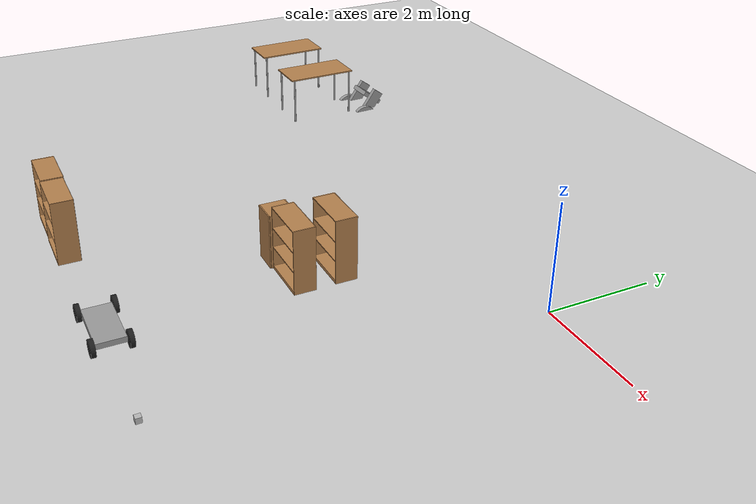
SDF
<sdf version="1.6">
 <world name="default">
  <model name="ground_plane">
   <static>1</static>
   <link name="link">
    <collision name="collision">
     <geometry><plane><normal>0 0 1</normal><size>100 100</size></plane></geometry>
     <surface><friction><ode><mu>100</mu><mu2>50</mu2></ode></friction></surface>
    </collision>
    <visual name="visual">
     <cast_shadows>0</cast_shadows>
     <geometry><plane><normal>0 0 1</normal><size>100 100</size></plane></geometry>
     <material>
      <script><uri>file://media/materials/scripts/gazebo.material</uri><name>Gazebo/Grey</name></script>
     </material>
    </visual>
   </link>
  </model>
  <model name="robot_clone">
   <link name="link_0">
    <inertial>
     <mass>1</mass>
     <inertia>
      <ixx>0.166667</ixx>
      <ixy>0</ixy>
      <ixz>0</ixz>
      <iyy>0.166667</iyy>
      <iyz>0</iyz>
      <izz>0.166667</izz>
     </inertia>
    </inertial>
    <pose>-0.275 0.827554 -0.060043 0 -0 0</pose>
    <visual name="visual">
     <geometry><box><size>0.5 0.5 0.1</size></box></geometry>
     <material>
      <lighting>1</lighting>
      <script><uri>file://media/materials/scripts/gazebo.material</uri><name>Gazebo/Grey</name></script>
      <shader type="pixel"><normal_map>__default__</normal_map></shader>
      <ambient>0.3 0.3 0.3 1</ambient>
      <diffuse>0.7 0.7 0.7 1</diffuse>
      <specular>0.01 0.01 0.01 1</specular>
      <emissive>0 0 0 1</emissive>
     </material>
    </visual>
    <collision name="collision">
     <geometry><box><size>0.5 0.5 0.1</size></box></geometry>
     <surface>
      <friction>
       <ode><mu>1</mu><mu2>1</mu2><fdir1>0 0 0</fdir1><slip1>0</slip1><slip2>0</slip2></ode>
       <torsional>
        <coefficient>1</coefficient>
        <patch_radius>0</patch_radius>
        <surface_radius>0</surface_radius>
        <use_patch_radius>1</use_patch_radius>
        <ode><slip>0</slip></ode>
       </torsional>
      </friction>
      <bounce><restitution_coefficient>0</restitution_coefficient><threshold>1e+06</threshold></bounce>
      <contact>
       <collide_without_contact>0</collide_without_contact>
       <collide_without_contact_bitmask>1</collide_without_contact_bitmask>
       <collide_bitmask>1</collide_bitmask>
       <ode>
        <soft_cfm>0</soft_cfm>
        <soft_erp>0.2</soft_erp>
        <kp>1e+13</kp>
        <kd>1</kd>
        <max_vel>0.01</max_vel>
        <min_depth>0</min_depth>
       </ode>
       <bullet>
        <split_impulse>1</split_impulse>
        <split_impulse_penetration_threshold>-0.01</split_impulse_penetration_threshold>
        <soft_cfm>0</soft_cfm>
        <soft_erp>0.2</soft_erp>
        <kp>1e+13</kp>
        <kd>1</kd>
       </bullet>
      </contact>
     </surface>
    </collision>
   </link>
   <link name="link_1">
    <inertial>
     <mass>1</mass>
     <inertia>
      <ixx>0.166667</ixx>
      <ixy>0</ixy>
      <ixz>0</ixz>
      <iyy>0.166667</iyy>
      <iyz>0</iyz>
      <izz>0.166667</izz>
     </inertia>
    </inertial>
    <pose>0.025 0.827554 -0.260043 0 -0 0</pose>
    <visual name="visual">
     <geometry><box><size>0.1 0.25 0.8</size></box></geometry>
     <material>
      <lighting>1</lighting>
      <script><uri>file://media/materials/scripts/gazebo.material</uri><name>Gazebo/Grey</name></script>
      <shader type="pixel"><normal_map>__default__</normal_map></shader>
      <ambient>0.3 0.3 0.3 1</ambient>
      <diffuse>0.7 0.7 0.7 1</diffuse>
      <specular>0.01 0.01 0.01 1</specular>
      <emissive>0 0 0 1</emissive>
     </material>
    </visual>
    <collision name="collision">
     <geometry><box><size>0.1 0.25 0.8</size></box></geometry>
     <surface>
      <friction>
       <ode><mu>1</mu><mu2>1</mu2><fdir1>0 0 0</fdir1><slip1>0</slip1><slip2>0</slip2></ode>
       <torsional>
        <coefficient>1</coefficient>
        <patch_radius>0</patch_radius>
        <surface_radius>0</surface_radius>
        <use_patch_radius>1</use_patch_radius>
        <ode><slip>0</slip></ode>
       </torsional>
      </friction>
      <bounce><restitution_coefficient>0</restitution_coefficient><threshold>1e+06</threshold></bounce>
      <contact>
       <collide_without_contact>0</collide_without_contact>
       <collide_without_contact_bitmask>1</collide_without_contact_bitmask>
       <collide_bitmask>1</collide_bitmask>
       <ode>
        <soft_cfm>0</soft_cfm>
        <soft_erp>0.2</soft_erp>
        <kp>1e+13</kp>
        <kd>1</kd>
        <max_vel>0.01</max_vel>
        <min_depth>0</min_depth>
       </ode>
       <bullet>
        <split_impulse>1</split_impulse>
        <split_impulse_penetration_threshold>-0.01</split_impulse_penetration_threshold>
        <soft_cfm>0</soft_cfm>
        <soft_erp>0.2</soft_erp>
        <kp>1e+13</kp>
        <kd>1</kd>
       </bullet>
      </contact>
     </surface>
    </collision>
   </link>
   <link name="link_1_0">
    <inertial>
     <mass>1</mass>
     <inertia><ixx>0.145833</ixx><ixy>0</ixy><ixz>0</ixz><iyy>0.145833</iyy><iyz>0</iyz><izz>0.125</izz></inertia>
    </inertial>
    <pose>0.125 0.827554 -0.560043 0 1.57 0</pose>
    <visual name="visual">
     <geometry><cylinder><radius>0.3</radius><length>0.1</length></cylinder></geometry>
     <material>
      <lighting>1</lighting>
      <script><uri>file://media/materials/scripts/gazebo.material</uri><name>Gazebo/Grey</name></script>
      <shader type="pixel"><normal_map>__default__</normal_map></shader>
      <ambient>0.3 0.3 0.3 1</ambient>
      <diffuse>0.7 0.7 0.7 1</diffuse>
      <specular>0.01 0.01 0.01 1</specular>
      <emissive>0 0 0 1</emissive>
     </material>
    </visual>
    <collision name="collision">
     <geometry><cylinder><radius>0.3</radius><length>0.1</length></cylinder></geometry>
     <surface>
      <friction>
       <ode><mu>1</mu><mu2>1</mu2><fdir1>0 0 0</fdir1><slip1>0</slip1><slip2>0</slip2></ode>
       <torsional>
        <coefficient>1</coefficient>
        <patch_radius>0</patch_radius>
        <surface_radius>0</surface_radius>
        <use_patch_radius>1</use_patch_radius>
        <ode><slip>0</slip></ode>
       </torsional>
      </friction>
      <bounce><restitution_coefficient>0</restitution_coefficient><threshold>1e+06</threshold></bounce>
      <contact>
       <collide_without_contact>0</collide_without_contact>
       <collide_without_contact_bitmask>1</collide_without_contact_bitmask>
       <collide_bitmask>1</collide_bitmask>
       <ode>
        <soft_cfm>0</soft_cfm>
        <soft_erp>0.2</soft_erp>
        <kp>1e+13</kp>
        <kd>1</kd>
        <max_vel>0.01</max_vel>
        <min_depth>0</min_depth>
       </ode>
       <bullet>
        <split_impulse>1</split_impulse>
        <split_impulse_penetration_threshold>-0.01</split_impulse_penetration_threshold>
        <soft_cfm>0</soft_cfm>
        <soft_erp>0.2</soft_erp>
        <kp>1e+13</kp>
        <kd>1</kd>
       </bullet>
      </contact>
     </surface>
    </collision>
   </link>
   <link name="link_1_0_clone">
    <inertial>
     <mass>1</mass>
     <inertia><ixx>0.145833</ixx><ixy>0</ixy><ixz>0</ixz><iyy>0.145833</iyy><iyz>0</iyz><izz>0.125</izz></inertia>
    </inertial>
    <pose>-0.675 0.827554 -0.560043 0 1.57 0</pose>
    <visual name="visual_0">
     <geometry><cylinder><radius>0.3</radius><length>0.1</length></cylinder></geometry>
     <material>
      <lighting>1</lighting>
      <script><uri>file://media/materials/scripts/gazebo.material</uri><name>Gazebo/Grey</name></script>
      <shader type="pixel"><normal_map>__default__</normal_map></shader>
      <ambient>0.3 0.3 0.3 1</ambient>
      <diffuse>0.7 0.7 0.7 1</diffuse>
      <specular>0.01 0.01 0.01 1</specular>
      <emissive>0 0 0 1</emissive>
     </material>
    </visual>
    <collision name="collision">
     <geometry><cylinder><radius>0.3</radius><length>0.1</length></cylinder></geometry>
     <surface>
      <friction>
       <ode><mu>1</mu><mu2>1</mu2><fdir1>0 0 0</fdir1><slip1>0</slip1><slip2>0</slip2></ode>
       <torsional>
        <coefficient>1</coefficient>
        <patch_radius>0</patch_radius>
        <surface_radius>0</surface_radius>
        <use_patch_radius>1</use_patch_radius>
        <ode><slip>0</slip></ode>
       </torsional>
      </friction>
      <bounce><restitution_coefficient>0</restitution_coefficient><threshold>1e+06</threshold></bounce>
      <contact>
       <collide_without_contact>0</collide_without_contact>
       <collide_without_contact_bitmask>1</collide_without_contact_bitmask>
       <collide_bitmask>1</collide_bitmask>
       <ode>
        <soft_cfm>0</soft_cfm>
        <soft_erp>0.2</soft_erp>
        <kp>1e+13</kp>
        <kd>1</kd>
        <max_vel>0.01</max_vel>
        <min_depth>0</min_depth>
       </ode>
       <bullet>
        <split_impulse>1</split_impulse>
        <split_impulse_penetration_threshold>-0.01</split_impulse_penetration_threshold>
        <soft_cfm>0</soft_cfm>
        <soft_erp>0.2</soft_erp>
        <kp>1e+13</kp>
        <kd>1</kd>
       </bullet>
      </contact>
     </surface>
    </collision>
   </link>
   <link name="link_1_clone">
    <inertial>
     <mass>1</mass>
     <inertia>
      <ixx>0.166667</ixx>
      <ixy>0</ixy>
      <ixz>0</ixz>
      <iyy>0.166667</iyy>
      <iyz>0</iyz>
      <izz>0.166667</izz>
     </inertia>
    </inertial>
    <pose>-0.575 0.827554 -0.260043 0 -0 0</pose>
    <visual name="visual">
     <geometry><box><size>0.1 0.25 0.81</size></box></geometry>
     <material>
      <lighting>1</lighting>
      <script><uri>file://media/materials/scripts/gazebo.material</uri><name>Gazebo/Grey</name></script>
      <shader type="pixel"><normal_map>__default__</normal_map></shader>
      <ambient>0.3 0.3 0.3 1</ambient>
      <diffuse>0.7 0.7 0.7 1</diffuse>
      <specular>0.01 0.01 0.01 1</specular>
      <emissive>0 0 0 1</emissive>
     </material>
    </visual>
    <collision name="collision">
     <geometry><box><size>0.1 0.25 0.8</size></box></geometry>
     <surface>
      <friction>
       <ode><mu>1</mu><mu2>1</mu2><fdir1>0 0 0</fdir1><slip1>0</slip1><slip2>0</slip2></ode>
       <torsional>
        <coefficient>1</coefficient>
        <patch_radius>0</patch_radius>
        <surface_radius>0</surface_radius>
        <use_patch_radius>1</use_patch_radius>
        <ode><slip>0</slip></ode>
       </torsional>
      </friction>
      <bounce><restitution_coefficient>0</restitution_coefficient><threshold>1e+06</threshold></bounce>
      <contact>
       <collide_without_contact>0</collide_without_contact>
       <collide_without_contact_bitmask>1</collide_without_contact_bitmask>
       <collide_bitmask>1</collide_bitmask>
       <ode>
        <soft_cfm>0</soft_cfm>
        <soft_erp>0.2</soft_erp>
        <kp>1e+13</kp>
        <kd>1</kd>
        <max_vel>0.01</max_vel>
        <min_depth>0</min_depth>
       </ode>
       <bullet>
        <split_impulse>1</split_impulse>
        <split_impulse_penetration_threshold>-0.01</split_impulse_penetration_threshold>
        <soft_cfm>0</soft_cfm>
        <soft_erp>0.2</soft_erp>
        <kp>1e+13</kp>
        <kd>1</kd>
       </bullet>
      </contact>
     </surface>
    </collision>
   </link>
   <joint name="link_0_JOINT_0_0" type="revolute">
    <parent>link_0</parent>
    <child>link_1_clone</child>
    <pose>0 0 0.2 0 -0 0</pose>
    <axis>
     <xyz>1 0 0</xyz>
     <use_parent_model_frame>0</use_parent_model_frame>
     <limit>
      <lower>-1.79769e+308</lower>
      <upper>1.79769e+308</upper>
      <effort>-1</effort>
      <velocity>-1</velocity>
     </limit>
     <dynamics>
      <spring_reference>0</spring_reference>
      <spring_stiffness>0</spring_stiffness>
      <damping>0</damping>
      <friction>0</friction>
     </dynamics>
    </axis>
    <physics>
     <ode><limit><cfm>0</cfm><erp>0.2</erp></limit><suspension><cfm>0</cfm><erp>0.2</erp></suspension></ode>
    </physics>
   </joint>
   <joint name="link_0_JOINT_2" type="revolute">
    <parent>link_0</parent>
    <child>link_1</child>
    <pose>0 0 0.2 0 -0 0</pose>
    <axis>
     <xyz>1 0 0</xyz>
     <use_parent_model_frame>0</use_parent_model_frame>
     <limit>
      <lower>-1.79769e+308</lower>
      <upper>1.79769e+308</upper>
      <effort>-1</effort>
      <velocity>-1</velocity>
     </limit>
     <dynamics>
      <spring_reference>0</spring_reference>
      <spring_stiffness>0</spring_stiffness>
      <damping>0</damping>
      <friction>0</friction>
     </dynamics>
    </axis>
    <physics>
     <ode><limit><cfm>0</cfm><erp>0.2</erp></limit><suspension><cfm>0</cfm><erp>0.2</erp></suspension></ode>
    </physics>
   </joint>
   <joint name="link_1_JOINT_3" type="revolute">
    <parent>link_1</parent>
    <child>link_1_0</child>
    <axis>
     <xyz>0 0 1</xyz>
     <use_parent_model_frame>0</use_parent_model_frame>
     <limit>
      <lower>-1.79769e+308</lower>
      <upper>1.79769e+308</upper>
      <effort>-1</effort>
      <velocity>-1</velocity>
     </limit>
     <dynamics>
      <spring_reference>0</spring_reference>
      <spring_stiffness>0</spring_stiffness>
      <damping>0</damping>
      <friction>0</friction>
     </dynamics>
    </axis>
    <physics>
     <ode><limit><cfm>0</cfm><erp>0.2</erp></limit><suspension><cfm>0</cfm><erp>0.2</erp></suspension></ode>
    </physics>
   </joint>
   <joint name="link_1_clone_JOINT_1" type="revolute">
    <parent>link_1_clone</parent>
    <child>link_1_0_clone</child>
    <axis>
     <xyz>0 0 1</xyz>
     <use_parent_model_frame>0</use_parent_model_frame>
     <limit>
      <lower>-1.79769e+308</lower>
      <upper>1.79769e+308</upper>
      <effort>-1</effort>
      <velocity>-1</velocity>
     </limit>
     <dynamics>
      <spring_reference>0</spring_reference>
      <spring_stiffness>0</spring_stiffness>
      <damping>0</damping>
      <friction>0</friction>
     </dynamics>
    </axis>
    <physics>
     <ode><limit><cfm>0</cfm><erp>0.2</erp></limit><suspension><cfm>0</cfm><erp>0.2</erp></suspension></ode>
    </physics>
   </joint>
   <static>0</static>
   <pose>-8.72496 0.660742 0.720381 -0.625823 -1e-06 0.049045</pose>
  </model>
  <model name="bookshelf_clone_0">
   <static>1</static>
   <link name="link">
    <inertial><mass>1</mass></inertial>
    <collision name="back">
     <pose>0 0.005 0.6 0 -0 0</pose>
     <geometry><box><size>0.9 0.01 1.2</size></box></geometry>
    </collision>
    <visual name="visual1">
     <pose>0 0.005 0.6 0 -0 0</pose>
     <geometry><box><size>0.9 0.01 1.2</size></box></geometry>
     <material>
      <script><uri>file://media/materials/scripts/gazebo.material</uri><name>Gazebo/Wood</name></script>
     </material>
    </visual>
    <collision name="left_side">
     <pose>0.45 -0.195 0.6 0 -0 0</pose>
     <geometry><box><size>0.02 0.4 1.2</size></box></geometry>
    </collision>
    <visual name="visual2">
     <pose>0.45 -0.195 0.6 0 -0 0</pose>
     <geometry><box><size>0.02 0.4 1.2</size></box></geometry>
     <material>
      <script><uri>file://media/materials/scripts/gazebo.material</uri><name>Gazebo/Wood</name></script>
     </material>
    </visual>
    <collision name="right_side">
     <pose>-0.45 -0.195 0.6 0 -0 0</pose>
     <geometry><box><size>0.02 0.4 1.2</size></box></geometry>
    </collision>
    <visual name="visual3">
     <pose>-0.45 -0.195 0.6 0 -0 0</pose>
     <geometry><box><size>0.02 0.4 1.2</size></box></geometry>
     <material>
      <script><uri>file://media/materials/scripts/gazebo.material</uri><name>Gazebo/Wood</name></script>
     </material>
    </visual>
    <collision name="bottom">
     <pose>0 -0.195 0.03 0 -0 0</pose>
     <geometry><box><size>0.88 0.4 0.06</size></box></geometry>
    </collision>
    <visual name="visual4">
     <pose>0 -0.195 0.03 0 -0 0</pose>
     <geometry><box><size>0.88 0.4 0.06</size></box></geometry>
     <material>
      <script><uri>file://media/materials/scripts/gazebo.material</uri><name>Gazebo/Wood</name></script>
     </material>
    </visual>
    <collision name="top">
     <pose>0 -0.195 1.19 0 -0 0</pose>
     <geometry><box><size>0.88 0.4 0.02</size></box></geometry>
    </collision>
    <visual name="visual5">
     <pose>0 -0.195 1.19 0 -0 0</pose>
     <geometry><box><size>0.88 0.4 0.02</size></box></geometry>
     <material>
      <script><uri>file://media/materials/scripts/gazebo.material</uri><name>Gazebo/Wood</name></script>
     </material>
    </visual>
    <collision name="low_shelf">
     <pose>0 -0.195 0.43 0 -0 0</pose>
     <geometry><box><size>0.88 0.4 0.02</size></box></geometry>
    </collision>
    <visual name="visual6">
     <pose>0 -0.195 0.43 0 -0 0</pose>
     <geometry><box><size>0.88 0.4 0.02</size></box></geometry>
     <material>
      <script><uri>file://media/materials/scripts/gazebo.material</uri><name>Gazebo/Wood</name></script>
     </material>
    </visual>
    <collision name="high_shelf">
     <pose>0 -0.195 0.8 0 -0 0</pose>
     <geometry><box><size>0.88 0.4 0.02</size></box></geometry>
    </collision>
    <visual name="visual7">
     <pose>0 -0.195 0.8 0 -0 0</pose>
     <geometry><box><size>0.88 0.4 0.02</size></box></geometry>
     <material>
      <script><uri>file://media/materials/scripts/gazebo.material</uri><name>Gazebo/Wood</name></script>
     </material>
    </visual>
   </link>
   <pose>-2.58222 -3.13212 0.038554 0 -0 0</pose>
  </model>
  <model name="camera">
   <pose>-0.275837 -6.62195 0.049998 0 -2.1e-05 1e-06</pose>
   <link name="link">
    <inertial>
     <mass>0.1</mass>
     <inertia>
      <ixx>0.000166667</ixx>
      <iyy>0.000166667</iyy>
      <izz>0.000166667</izz>
      <ixy>0</ixy>
      <ixz>0</ixz>
      <iyz>0</iyz>
     </inertia>
    </inertial>
    <collision name="collision"><geometry><box><size>0.1 0.1 0.1</size></box></geometry></collision>
    <visual name="visual"><geometry><box><size>0.1 0.1 0.1</size></box></geometry></visual>
    <sensor name="camera" type="camera">
     <camera name="__default__">
      <horizontal_fov>1.047</horizontal_fov>
      <image><width>320</width><height>240</height></image>
      <clip><near>0.1</near><far>100</far></clip>
     </camera>
     <always_on>1</always_on>
     <update_rate>30</update_rate>
     <visualize>1</visualize>
    </sensor>
   </link>
  </model>
  <model name="cart_front_steer">
   <link name="chassis">
    <pose>0 0 0.15 0 -0 0</pose>
    <inertial>
     <pose>0.1 0 0 0 -0 0</pose>
     <mass>10</mass>
     <inertia>
      <ixx>0.216667</ixx>
      <iyy>0.841667</iyy>
      <izz>1.04167</izz>
      <ixy>0</ixy>
      <ixz>0</ixz>
      <iyz>0</iyz>
     </inertia>
    </inertial>
    <collision name="collision"><geometry><box><size>1 0.5 0.1</size></box></geometry></collision>
    <visual name="visual">
     <geometry><box><size>1 0.5 0.1</size></box></geometry>
     <material>
      <script><uri>file://media/materials/scripts/gazebo.material</uri><name>Gazebo/Grey</name></script>
     </material>
    </visual>
   </link>
   <link name="wheel_front_left">
    <pose>0.5 0.298 0.15 -1.5708 -0.087266 0</pose>
    <inertial>
     <mass>0.5</mass>
     <inertia>
      <ixx>0.00307917</ixx>
      <iyy>0.00307917</iyy>
      <izz>0.005625</izz>
      <ixy>0</ixy>
      <ixz>0</ixz>
      <iyz>0</iyz>
     </inertia>
    </inertial>
    <collision name="collision">
     <geometry><cylinder><radius>0.15</radius><length>0.08</length></cylinder></geometry>
    </collision>
    <visual name="visual">
     <geometry><cylinder><radius>0.15</radius><length>0.08</length></cylinder></geometry>
     <material>
      <script><uri>file://media/materials/scripts/gazebo.material</uri><name>Gazebo/Black</name></script>
     </material>
    </visual>
   </link>
   <joint name="wheel_front_left_steer_spin" type="universal">
    <parent>chassis</parent>
    <child>wheel_front_left</child>
    <axis>
     <xyz>0 -1 0</xyz>
     <limit><lower>-0.610865</lower><upper>0.610865</upper></limit>
     <use_parent_model_frame>0</use_parent_model_frame>
     <dynamics><spring_reference>0</spring_reference><spring_stiffness>0</spring_stiffness></dynamics>
    </axis>
    <axis2>
     <xyz>0 0 1</xyz>
     <use_parent_model_frame>0</use_parent_model_frame>
     <dynamics><spring_reference>0</spring_reference><spring_stiffness>0</spring_stiffness></dynamics>
    </axis2>
   </joint>
   <link name="wheel_front_right">
    <pose>0.5 -0.298 0.15 -1.5708 -0.087266 0</pose>
    <inertial>
     <mass>0.5</mass>
     <inertia>
      <ixx>0.00307917</ixx>
      <iyy>0.00307917</iyy>
      <izz>0.005625</izz>
      <ixy>0</ixy>
      <ixz>0</ixz>
      <iyz>0</iyz>
     </inertia>
    </inertial>
    <collision name="collision">
     <geometry><cylinder><radius>0.15</radius><length>0.08</length></cylinder></geometry>
    </collision>
    <visual name="visual">
     <geometry><cylinder><radius>0.15</radius><length>0.08</length></cylinder></geometry>
     <material>
      <script><uri>file://media/materials/scripts/gazebo.material</uri><name>Gazebo/Black</name></script>
     </material>
    </visual>
   </link>
   <joint name="wheel_front_right_steer_spin" type="universal">
    <parent>chassis</parent>
    <child>wheel_front_right</child>
    <axis>
     <xyz>0 -1 0</xyz>
     <limit><lower>-0.610865</lower><upper>0.610865</upper></limit>
     <use_parent_model_frame>0</use_parent_model_frame>
     <dynamics><spring_reference>0</spring_reference><spring_stiffness>0</spring_stiffness></dynamics>
    </axis>
    <axis2>
     <xyz>0 0 1</xyz>
     <use_parent_model_frame>0</use_parent_model_frame>
     <dynamics><spring_reference>0</spring_reference><spring_stiffness>0</spring_stiffness></dynamics>
    </axis2>
   </joint>
   <link name="wheel_rear_left">
    <pose>-0.5 0.298 0.15 -1.5708 0 0</pose>
    <inertial>
     <mass>0.5</mass>
     <inertia>
      <ixx>0.00307917</ixx>
      <iyy>0.00307917</iyy>
      <izz>0.005625</izz>
      <ixy>0</ixy>
      <ixz>0</ixz>
      <iyz>0</iyz>
     </inertia>
    </inertial>
    <collision name="collision">
     <geometry><cylinder><radius>0.15</radius><length>0.08</length></cylinder></geometry>
    </collision>
    <visual name="visual">
     <geometry><cylinder><radius>0.15</radius><length>0.08</length></cylinder></geometry>
     <material>
      <script><uri>file://media/materials/scripts/gazebo.material</uri><name>Gazebo/Black</name></script>
     </material>
    </visual>
   </link>
   <joint name="wheel_rear_left_spin" type="revolute">
    <parent>chassis</parent>
    <child>wheel_rear_left</child>
    <axis>
     <xyz>0 0 1</xyz>
     <use_parent_model_frame>0</use_parent_model_frame>
     <limit><lower>-1e+16</lower><upper>1e+16</upper></limit>
     <dynamics><spring_reference>0</spring_reference><spring_stiffness>0</spring_stiffness></dynamics>
    </axis>
   </joint>
   <link name="wheel_rear_right">
    <pose>-0.5 -0.298 0.15 -1.5708 0 0</pose>
    <inertial>
     <mass>0.5</mass>
     <inertia>
      <ixx>0.00307917</ixx>
      <iyy>0.00307917</iyy>
      <izz>0.005625</izz>
      <ixy>0</ixy>
      <ixz>0</ixz>
      <iyz>0</iyz>
     </inertia>
    </inertial>
    <collision name="collision">
     <geometry><cylinder><radius>0.15</radius><length>0.08</length></cylinder></geometry>
    </collision>
    <visual name="visual">
     <geometry><cylinder><radius>0.15</radius><length>0.08</length></cylinder></geometry>
     <material>
      <script><uri>file://media/materials/scripts/gazebo.material</uri><name>Gazebo/Black</name></script>
     </material>
    </visual>
   </link>
   <joint name="wheel_rear_right_spin" type="revolute">
    <parent>chassis</parent>
    <child>wheel_rear_right</child>
    <axis>
     <xyz>0 0 1</xyz>
     <use_parent_model_frame>0</use_parent_model_frame>
     <limit><lower>-1e+16</lower><upper>1e+16</upper></limit>
     <dynamics><spring_reference>0</spring_reference><spring_stiffness>0</spring_stiffness></dynamics>
    </axis>
   </joint>
   <pose>-2.47156 -6.57014 0 0 0 -0.000501</pose>
  </model>
  <model name="cabinet_clone_0_clone_clone">
   <static>1</static>
   <link name="cabinet_bottom_plate">
    <inertial>
     <pose>0 0 -1 0 -0 0</pose>
     <inertia><ixx>2.05</ixx><ixy>0</ixy><ixz>0</ixz><iyy>2.05</iyy><iyz>0</iyz><izz>2.05</izz></inertia>
     <mass>25</mass>
    </inertial>
    <collision name="cabinet_bottom_plate_geom">
     <pose>0 0 0.01 0 -0 0</pose>
     <geometry><box><size>0.45 0.45 0.02</size></box></geometry>
    </collision>
    <visual name="cabinet_bottom_plate_geom_visual">
     <pose>0 0 0.01 0 -0 0</pose>
     <geometry><box><size>0.45 0.45 0.02</size></box></geometry>
     <material>
      <script><uri>file://media/materials/scripts/gazebo.material</uri><name>Gazebo/Wood</name></script>
     </material>
    </visual>
    <collision name="cabinet_bottom_plate_geom_cabinet_back_plate">
     <pose>0.235 0 0.51 0 -0 0</pose>
     <geometry><box><size>0.02 0.45 1.02</size></box></geometry>
    </collision>
    <visual name="cabinet_bottom_plate_geom_cabinet_back_plate_visual">
     <pose>0.235 0 0.51 0 -0 0</pose>
     <geometry><box><size>0.02 0.45 1.02</size></box></geometry>
     <material>
      <script><uri>file://media/materials/scripts/gazebo.material</uri><name>Gazebo/Wood</name></script>
     </material>
    </visual>
    <collision name="cabinet_bottom_plate_geom_cabinet_left_plate">
     <pose>0 0.235 0.51 0 -0 0</pose>
     <geometry><box><size>0.45 0.02 1.02</size></box></geometry>
    </collision>
    <visual name="cabinet_bottom_plate_geom_cabinet_left_plate_visual">
     <pose>0 0.235 0.51 0 -0 0</pose>
     <geometry><box><size>0.45 0.02 1.02</size></box></geometry>
     <material>
      <script><uri>file://media/materials/scripts/gazebo.material</uri><name>Gazebo/Wood</name></script>
     </material>
    </visual>
    <collision name="cabinet_bottom_plate_geom_cabinet_middle_plate">
     <pose>0 0 0.51 0 -0 0</pose>
     <geometry><box><size>0.45 0.45 0.02</size></box></geometry>
    </collision>
    <visual name="cabinet_bottom_plate_geom_cabinet_middle_plate_visual">
     <pose>0 0 0.51 0 -0 0</pose>
     <geometry><box><size>0.45 0.45 0.02</size></box></geometry>
     <material>
      <script><uri>file://media/materials/scripts/gazebo.material</uri><name>Gazebo/Wood</name></script>
     </material>
    </visual>
    <collision name="cabinet_bottom_plate_geom_cabinet_right_plate">
     <pose>0 -0.235 0.51 0 -0 0</pose>
     <geometry><box><size>0.45 0.02 1.02</size></box></geometry>
    </collision>
    <visual name="cabinet_bottom_plate_geom_cabinet_right_plate_visual">
     <pose>0 -0.235 0.51 0 -0 0</pose>
     <geometry><box><size>0.45 0.02 1.02</size></box></geometry>
     <material>
      <script><uri>file://media/materials/scripts/gazebo.material</uri><name>Gazebo/Wood</name></script>
     </material>
    </visual>
    <collision name="cabinet_bottom_plate_geom_cabinet_top_plate">
     <pose>0 0 1.01 0 -0 0</pose>
     <geometry><box><size>0.45 0.45 0.02</size></box></geometry>
    </collision>
    <visual name="cabinet_bottom_plate_geom_cabinet_top_plate_visual">
     <pose>0 0 1.01 0 -0 0</pose>
     <geometry><box><size>0.45 0.45 0.02</size></box></geometry>
     <material>
      <script><uri>file://media/materials/scripts/gazebo.material</uri><name>Gazebo/Wood</name></script>
     </material>
    </visual>
   </link>
   <pose>-3.34171 -3.31286 0 0 -0 0</pose>
  </model>
  <model name="bookshelf_clone_0_clone_0">
   <static>1</static>
   <link name="link">
    <inertial><mass>1</mass></inertial>
    <collision name="back">
     <pose>0 0.005 0.6 0 -0 0</pose>
     <geometry><box><size>0.9 0.01 1.2</size></box></geometry>
    </collision>
    <visual name="visual1">
     <pose>0 0.005 0.6 0 -0 0</pose>
     <geometry><box><size>0.9 0.01 1.2</size></box></geometry>
     <material>
      <script><uri>file://media/materials/scripts/gazebo.material</uri><name>Gazebo/Wood</name></script>
     </material>
    </visual>
    <collision name="left_side">
     <pose>0.45 -0.195 0.6 0 -0 0</pose>
     <geometry><box><size>0.02 0.4 1.2</size></box></geometry>
    </collision>
    <visual name="visual2">
     <pose>0.45 -0.195 0.6 0 -0 0</pose>
     <geometry><box><size>0.02 0.4 1.2</size></box></geometry>
     <material>
      <script><uri>file://media/materials/scripts/gazebo.material</uri><name>Gazebo/Wood</name></script>
     </material>
    </visual>
    <collision name="right_side">
     <pose>-0.45 -0.195 0.6 0 -0 0</pose>
     <geometry><box><size>0.02 0.4 1.2</size></box></geometry>
    </collision>
    <visual name="visual3">
     <pose>-0.45 -0.195 0.6 0 -0 0</pose>
     <geometry><box><size>0.02 0.4 1.2</size></box></geometry>
     <material>
      <script><uri>file://media/materials/scripts/gazebo.material</uri><name>Gazebo/Wood</name></script>
     </material>
    </visual>
    <collision name="bottom">
     <pose>0 -0.195 0.03 0 -0 0</pose>
     <geometry><box><size>0.88 0.4 0.06</size></box></geometry>
    </collision>
    <visual name="visual4">
     <pose>0 -0.195 0.03 0 -0 0</pose>
     <geometry><box><size>0.88 0.4 0.06</size></box></geometry>
     <material>
      <script><uri>file://media/materials/scripts/gazebo.material</uri><name>Gazebo/Wood</name></script>
     </material>
    </visual>
    <collision name="top">
     <pose>0 -0.195 1.19 0 -0 0</pose>
     <geometry><box><size>0.88 0.4 0.02</size></box></geometry>
    </collision>
    <visual name="visual5">
     <pose>0 -0.195 1.19 0 -0 0</pose>
     <geometry><box><size>0.88 0.4 0.02</size></box></geometry>
     <material>
      <script><uri>file://media/materials/scripts/gazebo.material</uri><name>Gazebo/Wood</name></script>
     </material>
    </visual>
    <collision name="low_shelf">
     <pose>0 -0.195 0.43 0 -0 0</pose>
     <geometry><box><size>0.88 0.4 0.02</size></box></geometry>
    </collision>
    <visual name="visual6">
     <pose>0 -0.195 0.43 0 -0 0</pose>
     <geometry><box><size>0.88 0.4 0.02</size></box></geometry>
     <material>
      <script><uri>file://media/materials/scripts/gazebo.material</uri><name>Gazebo/Wood</name></script>
     </material>
    </visual>
    <collision name="high_shelf">
     <pose>0 -0.195 0.8 0 -0 0</pose>
     <geometry><box><size>0.88 0.4 0.02</size></box></geometry>
    </collision>
    <visual name="visual7">
     <pose>0 -0.195 0.8 0 -0 0</pose>
     <geometry><box><size>0.88 0.4 0.02</size></box></geometry>
     <material>
      <script><uri>file://media/materials/scripts/gazebo.material</uri><name>Gazebo/Wood</name></script>
     </material>
    </visual>
   </link>
   <pose>-6.07203 -6.43883 0.038554 0 -0 0</pose>
  </model>
  <model name="bookshelf_clone_0_clone_0_clone">
   <static>1</static>
   <link name="link">
    <inertial><mass>1</mass></inertial>
    <collision name="back">
     <pose>0 0.005 0.6 0 -0 0</pose>
     <geometry><box><size>0.9 0.01 1.2</size></box></geometry>
    </collision>
    <visual name="visual1">
     <pose>0 0.005 0.6 0 -0 0</pose>
     <geometry><box><size>0.9 0.01 1.2</size></box></geometry>
     <material>
      <script><uri>file://media/materials/scripts/gazebo.material</uri><name>Gazebo/Wood</name></script>
     </material>
    </visual>
    <collision name="left_side">
     <pose>0.45 -0.195 0.6 0 -0 0</pose>
     <geometry><box><size>0.02 0.4 1.2</size></box></geometry>
    </collision>
    <visual name="visual2">
     <pose>0.45 -0.195 0.6 0 -0 0</pose>
     <geometry><box><size>0.02 0.4 1.2</size></box></geometry>
     <material>
      <script><uri>file://media/materials/scripts/gazebo.material</uri><name>Gazebo/Wood</name></script>
     </material>
    </visual>
    <collision name="right_side">
     <pose>-0.45 -0.195 0.6 0 -0 0</pose>
     <geometry><box><size>0.02 0.4 1.2</size></box></geometry>
    </collision>
    <visual name="visual3">
     <pose>-0.45 -0.195 0.6 0 -0 0</pose>
     <geometry><box><size>0.02 0.4 1.2</size></box></geometry>
     <material>
      <script><uri>file://media/materials/scripts/gazebo.material</uri><name>Gazebo/Wood</name></script>
     </material>
    </visual>
    <collision name="bottom">
     <pose>0 -0.195 0.03 0 -0 0</pose>
     <geometry><box><size>0.88 0.4 0.06</size></box></geometry>
    </collision>
    <visual name="visual4">
     <pose>0 -0.195 0.03 0 -0 0</pose>
     <geometry><box><size>0.88 0.4 0.06</size></box></geometry>
     <material>
      <script><uri>file://media/materials/scripts/gazebo.material</uri><name>Gazebo/Wood</name></script>
     </material>
    </visual>
    <collision name="top">
     <pose>0 -0.195 1.19 0 -0 0</pose>
     <geometry><box><size>0.88 0.4 0.02</size></box></geometry>
    </collision>
    <visual name="visual5">
     <pose>0 -0.195 1.19 0 -0 0</pose>
     <geometry><box><size>0.88 0.4 0.02</size></box></geometry>
     <material>
      <script><uri>file://media/materials/scripts/gazebo.material</uri><name>Gazebo/Wood</name></script>
     </material>
    </visual>
    <collision name="low_shelf">
     <pose>0 -0.195 0.43 0 -0 0</pose>
     <geometry><box><size>0.88 0.4 0.02</size></box></geometry>
    </collision>
    <visual name="visual6">
     <pose>0 -0.195 0.43 0 -0 0</pose>
     <geometry><box><size>0.88 0.4 0.02</size></box></geometry>
     <material>
      <script><uri>file://media/materials/scripts/gazebo.material</uri><name>Gazebo/Wood</name></script>
     </material>
    </visual>
    <collision name="high_shelf">
     <pose>0 -0.195 0.8 0 -0 0</pose>
     <geometry><box><size>0.88 0.4 0.02</size></box></geometry>
    </collision>
    <visual name="visual7">
     <pose>0 -0.195 0.8 0 -0 0</pose>
     <geometry><box><size>0.88 0.4 0.02</size></box></geometry>
     <material>
      <script><uri>file://media/materials/scripts/gazebo.material</uri><name>Gazebo/Wood</name></script>
     </material>
    </visual>
   </link>
   <pose>-5.14344 -6.45323 0.038554 0 -0 0</pose>
  </model>
  <model name="bookshelf_clone_0_clone_1">
   <static>1</static>
   <link name="link">
    <inertial><mass>1</mass></inertial>
    <collision name="back">
     <pose>0 0.005 0.6 0 -0 0</pose>
     <geometry><box><size>0.9 0.01 1.2</size></box></geometry>
    </collision>
    <visual name="visual1">
     <pose>0 0.005 0.6 0 -0 0</pose>
     <geometry><box><size>0.9 0.01 1.2</size></box></geometry>
     <material>
      <script><uri>file://media/materials/scripts/gazebo.material</uri><name>Gazebo/Wood</name></script>
     </material>
    </visual>
    <collision name="left_side">
     <pose>0.45 -0.195 0.6 0 -0 0</pose>
     <geometry><box><size>0.02 0.4 1.2</size></box></geometry>
    </collision>
    <visual name="visual2">
     <pose>0.45 -0.195 0.6 0 -0 0</pose>
     <geometry><box><size>0.02 0.4 1.2</size></box></geometry>
     <material>
      <script><uri>file://media/materials/scripts/gazebo.material</uri><name>Gazebo/Wood</name></script>
     </material>
    </visual>
    <collision name="right_side">
     <pose>-0.45 -0.195 0.6 0 -0 0</pose>
     <geometry><box><size>0.02 0.4 1.2</size></box></geometry>
    </collision>
    <visual name="visual3">
     <pose>-0.45 -0.195 0.6 0 -0 0</pose>
     <geometry><box><size>0.02 0.4 1.2</size></box></geometry>
     <material>
      <script><uri>file://media/materials/scripts/gazebo.material</uri><name>Gazebo/Wood</name></script>
     </material>
    </visual>
    <collision name="bottom">
     <pose>0 -0.195 0.03 0 -0 0</pose>
     <geometry><box><size>0.88 0.4 0.06</size></box></geometry>
    </collision>
    <visual name="visual4">
     <pose>0 -0.195 0.03 0 -0 0</pose>
     <geometry><box><size>0.88 0.4 0.06</size></box></geometry>
     <material>
      <script><uri>file://media/materials/scripts/gazebo.material</uri><name>Gazebo/Wood</name></script>
     </material>
    </visual>
    <collision name="top">
     <pose>0 -0.195 1.19 0 -0 0</pose>
     <geometry><box><size>0.88 0.4 0.02</size></box></geometry>
    </collision>
    <visual name="visual5">
     <pose>0 -0.195 1.19 0 -0 0</pose>
     <geometry><box><size>0.88 0.4 0.02</size></box></geometry>
     <material>
      <script><uri>file://media/materials/scripts/gazebo.material</uri><name>Gazebo/Wood</name></script>
     </material>
    </visual>
    <collision name="low_shelf">
     <pose>0 -0.195 0.43 0 -0 0</pose>
     <geometry><box><size>0.88 0.4 0.02</size></box></geometry>
    </collision>
    <visual name="visual6">
     <pose>0 -0.195 0.43 0 -0 0</pose>
     <geometry><box><size>0.88 0.4 0.02</size></box></geometry>
     <material>
      <script><uri>file://media/materials/scripts/gazebo.material</uri><name>Gazebo/Wood</name></script>
     </material>
    </visual>
    <collision name="high_shelf">
     <pose>0 -0.195 0.8 0 -0 0</pose>
     <geometry><box><size>0.88 0.4 0.02</size></box></geometry>
    </collision>
    <visual name="visual7">
     <pose>0 -0.195 0.8 0 -0 0</pose>
     <geometry><box><size>0.88 0.4 0.02</size></box></geometry>
     <material>
      <script><uri>file://media/materials/scripts/gazebo.material</uri><name>Gazebo/Wood</name></script>
     </material>
    </visual>
   </link>
   <pose>-2.59522 -2.37441 0.038554 0 -0 0</pose>
  </model>
  <model name="table_0_clone">
   <static>1</static>
   <link name="link">
    <collision name="surface">
     <pose>0 0 1 0 -0 0</pose>
     <geometry><box><size>1.5 0.8 0.03</size></box></geometry>
     <surface><friction><ode><mu>0.6</mu><mu2>0.6</mu2></ode></friction></surface>
    </collision>
    <visual name="visual1">
     <pose>0 0 1 0 -0 0</pose>
     <geometry><box><size>1.5 0.8 0.03</size></box></geometry>
     <material>
      <script><uri>file://media/materials/scripts/gazebo.material</uri><name>Gazebo/Wood</name></script>
     </material>
    </visual>
    <collision name="front_left_leg">
     <pose>0.68 0.38 0.5 0 -0 0</pose>
     <geometry><cylinder><radius>0.02</radius><length>1</length></cylinder></geometry>
    </collision>
    <visual name="front_left_leg">
     <pose>0.68 0.38 0.5 0 -0 0</pose>
     <geometry><cylinder><radius>0.02</radius><length>1</length></cylinder></geometry>
     <material>
      <script><uri>file://media/materials/scripts/gazebo.material</uri><name>Gazebo/Grey</name></script>
     </material>
    </visual>
    <collision name="front_right_leg">
     <pose>0.68 -0.38 0.5 0 -0 0</pose>
     <geometry><cylinder><radius>0.02</radius><length>1</length></cylinder></geometry>
    </collision>
    <visual name="front_right_leg">
     <pose>0.68 -0.38 0.5 0 -0 0</pose>
     <geometry><cylinder><radius>0.02</radius><length>1</length></cylinder></geometry>
     <material>
      <script><uri>file://media/materials/scripts/gazebo.material</uri><name>Gazebo/Grey</name></script>
     </material>
    </visual>
    <collision name="back_right_leg">
     <pose>-0.68 -0.38 0.5 0 -0 0</pose>
     <geometry><cylinder><radius>0.02</radius><length>1</length></cylinder></geometry>
    </collision>
    <visual name="back_right_leg">
     <pose>-0.68 -0.38 0.5 0 -0 0</pose>
     <geometry><cylinder><radius>0.02</radius><length>1</length></cylinder></geometry>
     <material>
      <script><uri>file://media/materials/scripts/gazebo.material</uri><name>Gazebo/Grey</name></script>
     </material>
    </visual>
    <collision name="back_left_leg">
     <pose>-0.68 0.38 0.5 0 -0 0</pose>
     <geometry><cylinder><radius>0.02</radius><length>1</length></cylinder></geometry>
    </collision>
    <visual name="back_left_leg">
     <pose>-0.68 0.38 0.5 0 -0 0</pose>
     <geometry><cylinder><radius>0.02</radius><length>1</length></cylinder></geometry>
     <material>
      <script><uri>file://media/materials/scripts/gazebo.material</uri><name>Gazebo/Grey</name></script>
     </material>
    </visual>
   </link>
   <pose>-10.7189 -0.080171 0 0 0 -1.5538</pose>
  </model>
  <model name="table_0_clone_0">
   <static>1</static>
   <link name="link">
    <collision name="surface">
     <pose>0 0 1 0 -0 0</pose>
     <geometry><box><size>1.5 0.8 0.03</size></box></geometry>
     <surface><friction><ode><mu>0.6</mu><mu2>0.6</mu2></ode></friction></surface>
    </collision>
    <visual name="visual1">
     <pose>0 0 1 0 -0 0</pose>
     <geometry><box><size>1.5 0.8 0.03</size></box></geometry>
     <material>
      <script><uri>file://media/materials/scripts/gazebo.material</uri><name>Gazebo/Wood</name></script>
     </material>
    </visual>
    <collision name="front_left_leg">
     <pose>0.68 0.38 0.5 0 -0 0</pose>
     <geometry><cylinder><radius>0.02</radius><length>1</length></cylinder></geometry>
    </collision>
    <visual name="front_left_leg">
     <pose>0.68 0.38 0.5 0 -0 0</pose>
     <geometry><cylinder><radius>0.02</radius><length>1</length></cylinder></geometry>
     <material>
      <script><uri>file://media/materials/scripts/gazebo.material</uri><name>Gazebo/Grey</name></script>
     </material>
    </visual>
    <collision name="front_right_leg">
     <pose>0.68 -0.38 0.5 0 -0 0</pose>
     <geometry><cylinder><radius>0.02</radius><length>1</length></cylinder></geometry>
    </collision>
    <visual name="front_right_leg">
     <pose>0.68 -0.38 0.5 0 -0 0</pose>
     <geometry><cylinder><radius>0.02</radius><length>1</length></cylinder></geometry>
     <material>
      <script><uri>file://media/materials/scripts/gazebo.material</uri><name>Gazebo/Grey</name></script>
     </material>
    </visual>
    <collision name="back_right_leg">
     <pose>-0.68 -0.38 0.5 0 -0 0</pose>
     <geometry><cylinder><radius>0.02</radius><length>1</length></cylinder></geometry>
    </collision>
    <visual name="back_right_leg">
     <pose>-0.68 -0.38 0.5 0 -0 0</pose>
     <geometry><cylinder><radius>0.02</radius><length>1</length></cylinder></geometry>
     <material>
      <script><uri>file://media/materials/scripts/gazebo.material</uri><name>Gazebo/Grey</name></script>
     </material>
    </visual>
    <collision name="back_left_leg">
     <pose>-0.68 0.38 0.5 0 -0 0</pose>
     <geometry><cylinder><radius>0.02</radius><length>1</length></cylinder></geometry>
    </collision>
    <visual name="back_left_leg">
     <pose>-0.68 0.38 0.5 0 -0 0</pose>
     <geometry><cylinder><radius>0.02</radius><length>1</length></cylinder></geometry>
     <material>
      <script><uri>file://media/materials/scripts/gazebo.material</uri><name>Gazebo/Grey</name></script>
     </material>
    </visual>
   </link>
   <pose>-9.05334 -0.059064 0 0 0 -1.5538</pose>
  </model>
 </world>
</sdf>
